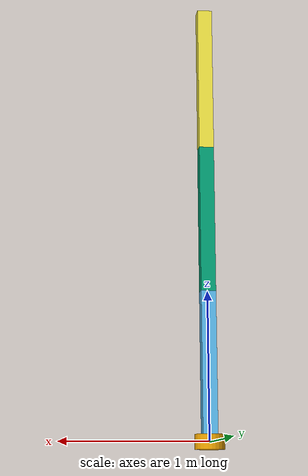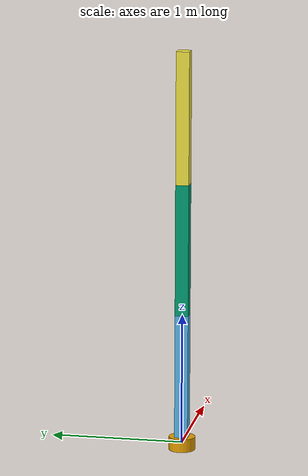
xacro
<?xml version="1.0"?>
<robot xmlns:xacro="http://www.ros.org/wiki/xacro" name="planar_rrr_robot">
  <xacro:property name="l1" value="1.0"/>
  <xacro:property name="l2" value="1.0"/>
  <xacro:property name="l3" value="1.0"/>
  <link name="base_link">
    <visual>
      <geometry>
        <cylinder length="0.1" radius="0.1"/>
      </geometry>
    </visual>
    <collision>
      <geometry>
        <cylinder length="0.1" radius="0.1"/>
      </geometry>
    </collision>
  </link>
  <joint name="joint1" type="continuous">
    <parent link="base_link"/>
    <child link="link1"/>
    <origin xyz="0 0 0" rpy="0 0 0"/>
    <axis xyz="1 0 0"/>
  </joint>
  <link name="link1">
    <visual>
      <geometry>
        <box size="0.1 0.1 ${l1}"/>
      </geometry>
      <origin xyz="0 0 ${l1/2}" rpy="0 0 0"/>
    </visual>
    <collision>
      <geometry>
        <box size="0.1 0.1 ${l1}"/>
      </geometry>
      <origin xyz="0 0 ${l1/2}" rpy="0 0 0"/>
    </collision>
  </link>
  <joint name="joint2" type="continuous">
    <parent link="link1"/>
    <child link="link2"/>
    <origin xyz="0 0 ${l1}" rpy="0 0 0"/>
    <axis xyz="1 0 0"/>
  </joint>
  <link name="link2">
    <visual>
      <geometry>
        <box size="0.1 0.1 ${l2}"/>
      </geometry>
      <origin xyz="0 0 ${l2/2}" rpy="0 0 0"/>
    </visual>
    <collision>
      <geometry>
        <box size="0.1 0.1 ${l2}"/>
      </geometry>
      <origin xyz="0 0 ${l2/2}" rpy="0 0 0"/>
    </collision>
  </link>
  <joint name="joint3" type="continuous">
    <parent link="link2"/>
    <child link="link3"/>
    <origin xyz="0 0 ${l2}" rpy="0 0 0"/>
    <axis xyz="1 0 0"/>
  </joint>
  <link name="link3">
    <visual>
      <geometry>
        <box size="0.1 0.1 ${l3}"/>
      </geometry>
      <origin xyz="0 0 ${l3/2}" rpy="0 0 0"/>
    </visual>
    <collision>
      <geometry>
        <box size="0.1 0.1 ${l3}"/>
      </geometry>
      <origin xyz="0 0 ${l3/2}" rpy="0 0 0"/>
    </collision>
  </link>
  <joint name="end_effector_joint" type="fixed">
    <parent link="link3"/>
    <child link="end_effector"/>
    <origin xyz="0 0 ${l3}" rpy="0 0 0"/>
  </joint>
  <link name="end_effector"/>
</robot>
